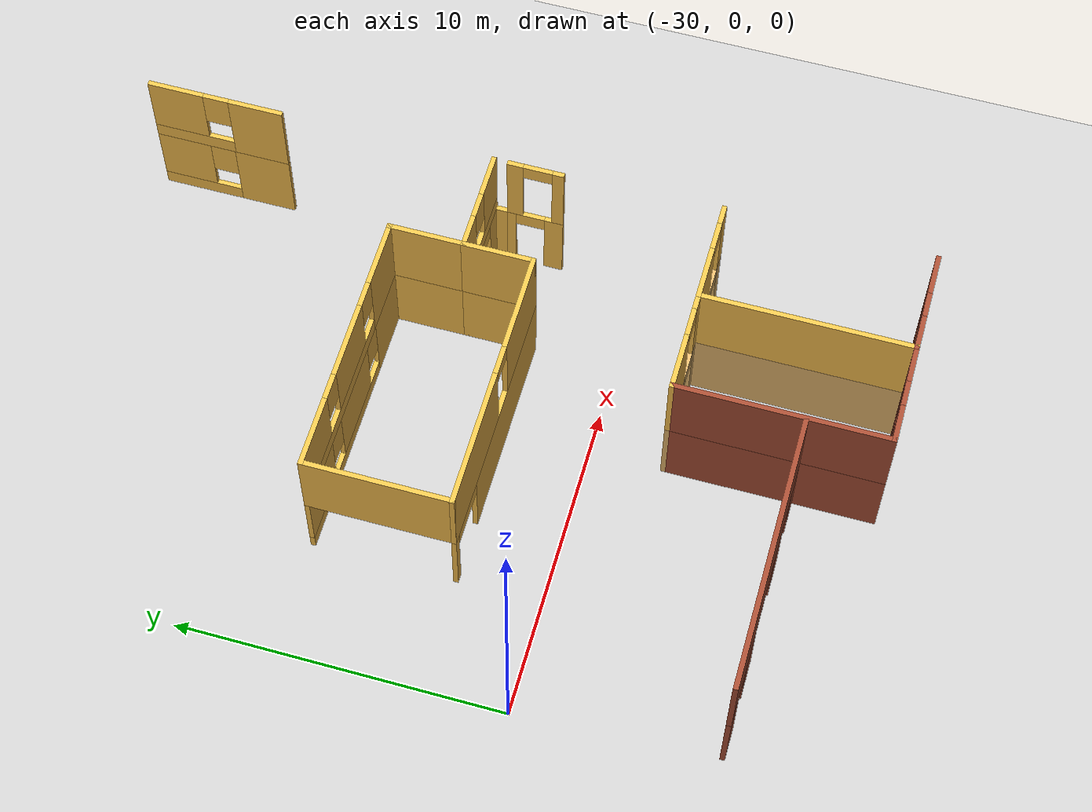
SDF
<sdf version="1.7">
 <world name="default">
  <model name="ground_plane">
   <static>1</static>
   <link name="link">
    <collision name="collision">
     <geometry><plane><normal>0 0 1</normal><size>100 100</size></plane></geometry>
     <surface>
      <contact><collide_bitmask>65535</collide_bitmask></contact>
      <friction><ode><mu>100</mu><mu2>50</mu2></ode></friction>
     </surface>
    </collision>
    <visual name="visual">
     <cast_shadows>0</cast_shadows>
     <geometry><plane><normal>0 0 1</normal><size>100 100</size></plane></geometry>
     <material>
      <script><uri>file://media/materials/scripts/gazebo.material</uri><name>Gazebo/Grey</name></script>
     </material>
    </visual>
   </link>
  </model>
  <model name="DepartmentBuilding">
   <pose>-25.6559 18.8293 0 0 -0 0</pose>
   <link name="Wall_139">
    <pose>3.31941 -16.2196 0 0 -0 0</pose>
    <visual name="Wall_139_Visual_0">
     <pose>-3.98692 0 1.25 0 -0 0</pose>
     <geometry><box><size>0.276156 0.15 2.5</size></box></geometry>
     <material>
      <script><uri>file://media/materials/scripts/gazebo.material</uri><name>Gazebo/Grey</name></script>
      <ambient>1 0.764706 0.305882 1</ambient>
     </material>
     <meta><layer>0</layer></meta>
    </visual>
    <collision name="Wall_139_Collision_0">
     <geometry><box><size>0.276156 0.15 2.5</size></box></geometry>
     <pose>-3.98692 0 1.25 0 -0 0</pose>
    </collision>
    <visual name="Wall_139_Visual_1">
     <pose>0.988078 0 1.25 0 -0 0</pose>
     <geometry><box><size>6.27384 0.15 2.5</size></box></geometry>
     <material>
      <script><uri>file://media/materials/scripts/gazebo.material</uri><name>Gazebo/Grey</name></script>
      <ambient>1 0.764706 0.305882 1</ambient>
     </material>
     <meta><layer>0</layer></meta>
    </visual>
    <collision name="Wall_139_Collision_1">
     <geometry><box><size>6.27384 0.15 2.5</size></box></geometry>
     <pose>0.988078 0 1.25 0 -0 0</pose>
    </collision>
    <visual name="Wall_139_Visual_2">
     <pose>-2.99884 0 2.25 0 -0 0</pose>
     <geometry><box><size>1.7 0.15 0.5</size></box></geometry>
     <material>
      <script><uri>file://media/materials/scripts/gazebo.material</uri><name>Gazebo/Grey</name></script>
      <ambient>1 0.764706 0.305882 1</ambient>
     </material>
     <meta><layer>0</layer></meta>
    </visual>
    <collision name="Wall_139_Collision_2">
     <geometry><box><size>1.7 0.15 0.5</size></box></geometry>
     <pose>-2.99884 0 2.25 0 -0 0</pose>
    </collision>
   </link>
   <link name="Wall_141">
    <pose>3.31941 -11.8696 0 0 -0 3.14159</pose>
    <visual name="Wall_141_Visual_0">
     <pose>-3.09473 0 1.25 0 -0 0</pose>
     <geometry><box><size>2.06054 0.15 2.5</size></box></geometry>
     <material>
      <script><uri>file://media/materials/scripts/gazebo.material</uri><name>Gazebo/Grey</name></script>
      <ambient>1 0.764706 0.305882 1</ambient>
     </material>
     <meta><layer>0</layer></meta>
    </visual>
    <collision name="Wall_141_Collision_0">
     <geometry><box><size>2.06054 0.15 2.5</size></box></geometry>
     <pose>-3.09473 0 1.25 0 -0 0</pose>
    </collision>
    <visual name="Wall_141_Visual_1">
     <pose>1.03027 0 0.25 0 -0 0</pose>
     <geometry><box><size>6.18946 0.15 0.5</size></box></geometry>
     <material>
      <script><uri>file://media/materials/scripts/gazebo.material</uri><name>Gazebo/Grey</name></script>
      <ambient>1 0.764706 0.305882 1</ambient>
     </material>
     <meta><layer>0</layer></meta>
    </visual>
    <collision name="Wall_141_Collision_1">
     <geometry><box><size>6.18946 0.15 0.5</size></box></geometry>
     <pose>1.03027 0 0.25 0 -0 0</pose>
    </collision>
    <visual name="Wall_141_Visual_2">
     <pose>-0.021918 0 1.5 0 -0 0</pose>
     <geometry><box><size>2.48509 0.15 2</size></box></geometry>
     <material>
      <script><uri>file://media/materials/scripts/gazebo.material</uri><name>Gazebo/Grey</name></script>
      <ambient>1 0.764706 0.305882 1</ambient>
     </material>
     <meta><layer>0</layer></meta>
    </visual>
    <collision name="Wall_141_Collision_2">
     <geometry><box><size>2.48509 0.15 2</size></box></geometry>
     <pose>-0.021918 0 1.5 0 -0 0</pose>
    </collision>
    <visual name="Wall_141_Visual_3">
     <pose>3.07281 0 1.5 0 -0 0</pose>
     <geometry><box><size>2.10437 0.15 2</size></box></geometry>
     <material>
      <script><uri>file://media/materials/scripts/gazebo.material</uri><name>Gazebo/Grey</name></script>
      <ambient>1 0.764706 0.305882 1</ambient>
     </material>
     <meta><layer>0</layer></meta>
    </visual>
    <collision name="Wall_141_Collision_3">
     <geometry><box><size>2.10437 0.15 2</size></box></geometry>
     <pose>3.07281 0 1.5 0 -0 0</pose>
    </collision>
    <visual name="Wall_141_Visual_4">
     <pose>-1.66446 0 1.9 0 -0 0</pose>
     <geometry><box><size>0.8 0.15 1.2</size></box></geometry>
     <material>
      <script><uri>file://media/materials/scripts/gazebo.material</uri><name>Gazebo/Grey</name></script>
      <ambient>1 0.764706 0.305882 1</ambient>
     </material>
     <meta><layer>0</layer></meta>
    </visual>
    <collision name="Wall_141_Collision_4">
     <geometry><box><size>0.8 0.15 1.2</size></box></geometry>
     <pose>-1.66446 0 1.9 0 -0 0</pose>
    </collision>
    <visual name="Wall_141_Visual_5">
     <pose>1.62063 0 1.9 0 -0 0</pose>
     <geometry><box><size>0.8 0.15 1.2</size></box></geometry>
     <material>
      <script><uri>file://media/materials/scripts/gazebo.material</uri><name>Gazebo/Grey</name></script>
      <ambient>1 0.764706 0.305882 1</ambient>
     </material>
     <meta><layer>0</layer></meta>
    </visual>
    <collision name="Wall_141_Collision_5">
     <geometry><box><size>0.8 0.15 1.2</size></box></geometry>
     <pose>1.62063 0 1.9 0 -0 0</pose>
    </collision>
   </link>
   <link name="Wall_143">
    <collision name="Wall_143_Collision">
     <geometry><box><size>2.25 0.15 2.5</size></box></geometry>
     <pose>0 0 1.25 0 -0 0</pose>
    </collision>
    <visual name="Wall_143_Visual">
     <pose>0 0 1.25 0 -0 0</pose>
     <geometry><box><size>2.25 0.15 2.5</size></box></geometry>
     <material>
      <script><uri>file://media/materials/scripts/gazebo.material</uri><name>Gazebo/Grey</name></script>
      <ambient>1 0.764706 0.305882 1</ambient>
     </material>
     <meta><layer>0</layer></meta>
    </visual>
    <pose>7.36941 -15.1696 0 0 -0 1.5708</pose>
   </link>
   <link name="Wall_144">
    <collision name="Wall_144_Collision">
     <geometry><box><size>2.4 0.15 2.5</size></box></geometry>
     <pose>0 0 1.25 0 -0 0</pose>
    </collision>
    <visual name="Wall_144_Visual">
     <pose>0 0 1.25 0 -0 0</pose>
     <geometry><box><size>2.4 0.15 2.5</size></box></geometry>
     <material>
      <script><uri>file://media/materials/scripts/gazebo.material</uri><name>Gazebo/Grey</name></script>
      <ambient>1 0.764706 0.305882 1</ambient>
     </material>
     <meta><layer>0</layer></meta>
    </visual>
    <pose>7.36941 -12.9946 0 0 -0 1.5708</pose>
   </link>
   <link name="Wall_157">
    <pose>8.91941 -14.1196 0 0 -0 0</pose>
    <visual name="Wall_157_Visual_0">
     <pose>-1.25045 0 1.25 0 -0 0</pose>
     <geometry><box><size>0.749105 0.15 2.5</size></box></geometry>
     <material>
      <script><uri>file://media/materials/scripts/gazebo.material</uri><name>Gazebo/Grey</name></script>
      <ambient>1 0.764706 0.305882 1</ambient>
     </material>
     <meta><layer>0</layer></meta>
    </visual>
    <collision name="Wall_157_Collision_0">
     <geometry><box><size>0.749105 0.15 2.5</size></box></geometry>
     <pose>-1.25045 0 1.25 0 -0 0</pose>
    </collision>
    <visual name="Wall_157_Visual_1">
     <pose>1.22455 0 1.25 0 -0 0</pose>
     <geometry><box><size>0.800895 0.15 2.5</size></box></geometry>
     <material>
      <script><uri>file://media/materials/scripts/gazebo.material</uri><name>Gazebo/Grey</name></script>
      <ambient>1 0.764706 0.305882 1</ambient>
     </material>
     <meta><layer>0</layer></meta>
    </visual>
    <collision name="Wall_157_Collision_1">
     <geometry><box><size>0.800895 0.15 2.5</size></box></geometry>
     <pose>1.22455 0 1.25 0 -0 0</pose>
    </collision>
    <visual name="Wall_157_Visual_2">
     <pose>-0.025895 0 2.25 0 -0 0</pose>
     <geometry><box><size>1.7 0.15 0.5</size></box></geometry>
     <material>
      <script><uri>file://media/materials/scripts/gazebo.material</uri><name>Gazebo/Grey</name></script>
      <ambient>1 0.764706 0.305882 1</ambient>
     </material>
     <meta><layer>0</layer></meta>
    </visual>
    <collision name="Wall_157_Collision_2">
     <geometry><box><size>1.7 0.15 0.5</size></box></geometry>
     <pose>-0.025895 0 2.25 0 -0 0</pose>
    </collision>
   </link>
   <link name="Wall_165">
    <collision name="Wall_165_Collision">
     <geometry><box><size>0.65 0.15 2.5</size></box></geometry>
     <pose>0 0 1.25 0 -0 0</pose>
    </collision>
    <visual name="Wall_165_Visual">
     <pose>0 0 1.25 0 -0 0</pose>
     <geometry><box><size>0.65 0.15 2.5</size></box></geometry>
     <material>
      <script><uri>file://media/materials/scripts/gazebo.material</uri><name>Gazebo/Grey</name></script>
      <ambient>1 0.764706 0.305882 1</ambient>
     </material>
     <meta><layer>0</layer></meta>
    </visual>
    <pose>10.4694 -14.3696 0 0 -0 1.5708</pose>
   </link>
   <link name="Wall_169">
    <pose>10.4694 -15.4196 0 0 -0 1.5708</pose>
    <visual name="Wall_169_Visual_0">
     <pose>-0.582411 0 1.25 0 -0 0</pose>
     <geometry><box><size>0.585178 0.15 2.5</size></box></geometry>
     <material>
      <script><uri>file://media/materials/scripts/gazebo.material</uri><name>Gazebo/Grey</name></script>
      <ambient>1 0.764706 0.305882 1</ambient>
     </material>
     <meta><layer>0</layer></meta>
    </visual>
    <collision name="Wall_169_Collision_0">
     <geometry><box><size>0.585178 0.15 2.5</size></box></geometry>
     <pose>-0.582411 0 1.25 0 -0 0</pose>
    </collision>
    <visual name="Wall_169_Visual_1">
     <pose>0.742589 0 1.25 0 -0 0</pose>
     <geometry><box><size>0.264822 0.15 2.5</size></box></geometry>
     <material>
      <script><uri>file://media/materials/scripts/gazebo.material</uri><name>Gazebo/Grey</name></script>
      <ambient>1 0.764706 0.305882 1</ambient>
     </material>
     <meta><layer>0</layer></meta>
    </visual>
    <collision name="Wall_169_Collision_1">
     <geometry><box><size>0.264822 0.15 2.5</size></box></geometry>
     <pose>0.742589 0 1.25 0 -0 0</pose>
    </collision>
    <visual name="Wall_169_Visual_2">
     <pose>0.160178 0 2.25 0 -0 0</pose>
     <geometry><box><size>0.9 0.15 0.5</size></box></geometry>
     <material>
      <script><uri>file://media/materials/scripts/gazebo.material</uri><name>Gazebo/Grey</name></script>
      <ambient>1 0.764706 0.305882 1</ambient>
     </material>
     <meta><layer>0</layer></meta>
    </visual>
    <collision name="Wall_169_Collision_2">
     <geometry><box><size>0.9 0.15 0.5</size></box></geometry>
     <pose>0.160178 0 2.25 0 -0 0</pose>
    </collision>
   </link>
   <link name="Wall_196">
    <pose>10.3194 -5.46094 0 0 -0 1.5708</pose>
    <visual name="Wall_196_Visual_0">
     <pose>-1.25705 0 1.25 0 -0 0</pose>
     <geometry><box><size>1.73591 0.15 2.5</size></box></geometry>
     <material>
      <script><uri>file://media/materials/scripts/gazebo.material</uri><name>Gazebo/Grey</name></script>
      <ambient>1 0.764706 0.305882 1</ambient>
     </material>
     <meta><layer>0</layer></meta>
    </visual>
    <collision name="Wall_196_Collision_0">
     <geometry><box><size>1.73591 0.15 2.5</size></box></geometry>
     <pose>-1.25705 0 1.25 0 -0 0</pose>
    </collision>
    <visual name="Wall_196_Visual_1">
     <pose>0.867953 0 0.25 0 -0 0</pose>
     <geometry><box><size>2.51409 0.15 0.5</size></box></geometry>
     <material>
      <script><uri>file://media/materials/scripts/gazebo.material</uri><name>Gazebo/Grey</name></script>
      <ambient>1 0.764706 0.305882 1</ambient>
     </material>
     <meta><layer>0</layer></meta>
    </visual>
    <collision name="Wall_196_Collision_1">
     <geometry><box><size>2.51409 0.15 0.5</size></box></geometry>
     <pose>0.867953 0 0.25 0 -0 0</pose>
    </collision>
    <visual name="Wall_196_Visual_2">
     <pose>1.26795 0 1.5 0 -0 0</pose>
     <geometry><box><size>1.71409 0.15 2</size></box></geometry>
     <material>
      <script><uri>file://media/materials/scripts/gazebo.material</uri><name>Gazebo/Grey</name></script>
      <ambient>1 0.764706 0.305882 1</ambient>
     </material>
     <meta><layer>0</layer></meta>
    </visual>
    <collision name="Wall_196_Collision_2">
     <geometry><box><size>1.71409 0.15 2</size></box></geometry>
     <pose>1.26795 0 1.5 0 -0 0</pose>
    </collision>
    <visual name="Wall_196_Visual_3">
     <pose>0.010906 0 1.9 0 -0 0</pose>
     <geometry><box><size>0.8 0.15 1.2</size></box></geometry>
     <material>
      <script><uri>file://media/materials/scripts/gazebo.material</uri><name>Gazebo/Grey</name></script>
      <ambient>1 0.764706 0.305882 1</ambient>
     </material>
     <meta><layer>0</layer></meta>
    </visual>
    <collision name="Wall_196_Collision_3">
     <geometry><box><size>0.8 0.15 1.2</size></box></geometry>
     <pose>0.010906 0 1.9 0 -0 0</pose>
    </collision>
   </link>
   <link name="Wall_37">
    <pose>9.08964 -21.0815 0 0 -0 3.14159</pose>
    <visual name="Wall_37_Visual_0">
     <pose>-1.3326 0 1.25 0 -0 0</pose>
     <geometry><box><size>0.584798 0.15 2.5</size></box></geometry>
     <material>
      <script><uri>file://media/materials/scripts/gazebo.material</uri><name>Gazebo/Grey</name></script>
      <ambient>0.913725 0.72549 0.431373 1</ambient>
     </material>
     <meta><layer>0</layer></meta>
    </visual>
    <collision name="Wall_37_Collision_0">
     <geometry><box><size>0.584798 0.15 2.5</size></box></geometry>
     <pose>-1.3326 0 1.25 0 -0 0</pose>
    </collision>
    <visual name="Wall_37_Visual_1">
     <pose>0.742399 0 1.25 0 -0 0</pose>
     <geometry><box><size>1.7652 0.15 2.5</size></box></geometry>
     <material>
      <script><uri>file://media/materials/scripts/gazebo.material</uri><name>Gazebo/Grey</name></script>
      <ambient>0.913725 0.72549 0.431373 1</ambient>
     </material>
     <meta><layer>0</layer></meta>
    </visual>
    <collision name="Wall_37_Collision_1">
     <geometry><box><size>1.7652 0.15 2.5</size></box></geometry>
     <pose>0.742399 0 1.25 0 -0 0</pose>
    </collision>
    <visual name="Wall_37_Visual_2">
     <pose>-0.590202 0 2.25 0 -0 0</pose>
     <geometry><box><size>0.9 0.15 0.5</size></box></geometry>
     <material>
      <script><uri>file://media/materials/scripts/gazebo.material</uri><name>Gazebo/Grey</name></script>
      <ambient>0.913725 0.72549 0.431373 1</ambient>
     </material>
     <meta><layer>0</layer></meta>
    </visual>
    <collision name="Wall_37_Collision_2">
     <geometry><box><size>0.9 0.15 0.5</size></box></geometry>
     <pose>-0.590202 0 2.25 0 -0 0</pose>
    </collision>
   </link>
   <link name="Wall_38">
    <collision name="Wall_38_Collision">
     <geometry><box><size>6.5 0.15 2.5</size></box></geometry>
     <pose>0 0 1.25 0 -0 0</pose>
    </collision>
    <visual name="Wall_38_Visual">
     <pose>0 0 1.25 0 -0 0</pose>
     <geometry><box><size>6.5 0.15 2.5</size></box></geometry>
     <material>
      <script><uri>file://media/materials/scripts/gazebo.material</uri><name>Gazebo/Grey</name></script>
      <ambient>0.913725 0.72549 0.431373 1</ambient>
     </material>
     <meta><layer>0</layer></meta>
    </visual>
    <pose>7.53964 -24.2565 0 0 -0 -1.5708</pose>
   </link>
   <link name="Wall_39">
    <pose>9.08964 -27.4315 0 0 -0 0</pose>
    <visual name="Wall_39_Visual_0">
     <pose>-1.00835 0 1.25 0 -0 0</pose>
     <geometry><box><size>1.2333 0.15 2.5</size></box></geometry>
     <material>
      <script><uri>file://media/materials/scripts/gazebo.material</uri><name>Gazebo/Bricks</name></script>
      <ambient>1 1 1 1</ambient>
     </material>
     <meta><layer>0</layer></meta>
    </visual>
    <collision name="Wall_39_Collision_0">
     <geometry><box><size>1.2333 0.15 2.5</size></box></geometry>
     <pose>-1.00835 0 1.25 0 -0 0</pose>
    </collision>
    <visual name="Wall_39_Visual_1">
     <pose>0.616651 0 0.25 0 -0 0</pose>
     <geometry><box><size>2.0167 0.15 0.5</size></box></geometry>
     <material>
      <script><uri>file://media/materials/scripts/gazebo.material</uri><name>Gazebo/Bricks</name></script>
      <ambient>1 1 1 1</ambient>
     </material>
     <meta><layer>0</layer></meta>
    </visual>
    <collision name="Wall_39_Collision_1">
     <geometry><box><size>2.0167 0.15 0.5</size></box></geometry>
     <pose>0.616651 0 0.25 0 -0 0</pose>
    </collision>
    <visual name="Wall_39_Visual_2">
     <pose>1.01665 0 1.5 0 -0 0</pose>
     <geometry><box><size>1.2167 0.15 2</size></box></geometry>
     <material>
      <script><uri>file://media/materials/scripts/gazebo.material</uri><name>Gazebo/Bricks</name></script>
      <ambient>1 1 1 1</ambient>
     </material>
     <meta><layer>0</layer></meta>
    </visual>
    <collision name="Wall_39_Collision_2">
     <geometry><box><size>1.2167 0.15 2</size></box></geometry>
     <pose>1.01665 0 1.5 0 -0 0</pose>
    </collision>
    <visual name="Wall_39_Visual_3">
     <pose>0.008302 0 1.9 0 -0 0</pose>
     <geometry><box><size>0.8 0.15 1.2</size></box></geometry>
     <material>
      <script><uri>file://media/materials/scripts/gazebo.material</uri><name>Gazebo/Bricks</name></script>
      <ambient>1 1 1 1</ambient>
     </material>
     <meta><layer>0</layer></meta>
    </visual>
    <collision name="Wall_39_Collision_3">
     <geometry><box><size>0.8 0.15 1.2</size></box></geometry>
     <pose>0.008302 0 1.9 0 -0 0</pose>
    </collision>
   </link>
   <link name="Wall_41">
    <pose>5.98964 -21.0815 0 0 -0 3.14159</pose>
    <visual name="Wall_41_Visual_0">
     <pose>-1.38156 0 1.25 0 -0 0</pose>
     <geometry><box><size>0.486873 0.15 2.5</size></box></geometry>
     <material>
      <script><uri>file://media/materials/scripts/gazebo.material</uri><name>Gazebo/Grey</name></script>
      <ambient>0.913725 0.72549 0.431373 1</ambient>
     </material>
     <meta><layer>0</layer></meta>
    </visual>
    <collision name="Wall_41_Collision_0">
     <geometry><box><size>0.486873 0.15 2.5</size></box></geometry>
     <pose>-1.38156 0 1.25 0 -0 0</pose>
    </collision>
    <visual name="Wall_41_Visual_1">
     <pose>0.693436 0 1.25 0 -0 0</pose>
     <geometry><box><size>1.86313 0.15 2.5</size></box></geometry>
     <material>
      <script><uri>file://media/materials/scripts/gazebo.material</uri><name>Gazebo/Grey</name></script>
      <ambient>0.913725 0.72549 0.431373 1</ambient>
     </material>
     <meta><layer>0</layer></meta>
    </visual>
    <collision name="Wall_41_Collision_1">
     <geometry><box><size>1.86313 0.15 2.5</size></box></geometry>
     <pose>0.693436 0 1.25 0 -0 0</pose>
    </collision>
    <visual name="Wall_41_Visual_2">
     <pose>-0.688127 0 2.25 0 -0 0</pose>
     <geometry><box><size>0.9 0.15 0.5</size></box></geometry>
     <material>
      <script><uri>file://media/materials/scripts/gazebo.material</uri><name>Gazebo/Grey</name></script>
      <ambient>0.913725 0.72549 0.431373 1</ambient>
     </material>
     <meta><layer>0</layer></meta>
    </visual>
    <collision name="Wall_41_Collision_2">
     <geometry><box><size>0.9 0.15 0.5</size></box></geometry>
     <pose>-0.688127 0 2.25 0 -0 0</pose>
    </collision>
   </link>
   <link name="Wall_42">
    <collision name="Wall_42_Collision">
     <geometry><box><size>6.5 0.15 2.5</size></box></geometry>
     <pose>0 0 1.25 0 -0 0</pose>
    </collision>
    <visual name="Wall_42_Visual">
     <pose>0 0 1.25 0 -0 0</pose>
     <geometry><box><size>6.5 0.15 2.5</size></box></geometry>
     <material>
      <script><uri>file://media/materials/scripts/gazebo.material</uri><name>Gazebo/Bricks</name></script>
      <ambient>1 1 1 1</ambient>
     </material>
     <meta><layer>0</layer></meta>
    </visual>
    <pose>4.43964 -24.2565 0 0 -0 -1.5708</pose>
   </link>
   <link name="Wall_43">
    <pose>5.98964 -27.4315 0 0 -0 0</pose>
    <visual name="Wall_43_Visual_0">
     <pose>-1.01229 0 1.25 0 -0 0</pose>
     <geometry><box><size>1.22543 0.15 2.5</size></box></geometry>
     <material>
      <script><uri>file://media/materials/scripts/gazebo.material</uri><name>Gazebo/Bricks</name></script>
      <ambient>1 1 1 1</ambient>
     </material>
     <meta><layer>0</layer></meta>
    </visual>
    <collision name="Wall_43_Collision_0">
     <geometry><box><size>1.22543 0.15 2.5</size></box></geometry>
     <pose>-1.01229 0 1.25 0 -0 0</pose>
    </collision>
    <visual name="Wall_43_Visual_1">
     <pose>0.612713 0 0.25 0 -0 0</pose>
     <geometry><box><size>2.02457 0.15 0.5</size></box></geometry>
     <material>
      <script><uri>file://media/materials/scripts/gazebo.material</uri><name>Gazebo/Bricks</name></script>
      <ambient>1 1 1 1</ambient>
     </material>
     <meta><layer>0</layer></meta>
    </visual>
    <collision name="Wall_43_Collision_1">
     <geometry><box><size>2.02457 0.15 0.5</size></box></geometry>
     <pose>0.612713 0 0.25 0 -0 0</pose>
    </collision>
    <visual name="Wall_43_Visual_2">
     <pose>1.01271 0 1.5 0 -0 0</pose>
     <geometry><box><size>1.22457 0.15 2</size></box></geometry>
     <material>
      <script><uri>file://media/materials/scripts/gazebo.material</uri><name>Gazebo/Bricks</name></script>
      <ambient>1 1 1 1</ambient>
     </material>
     <meta><layer>0</layer></meta>
    </visual>
    <collision name="Wall_43_Collision_2">
     <geometry><box><size>1.22457 0.15 2</size></box></geometry>
     <pose>1.01271 0 1.5 0 -0 0</pose>
    </collision>
    <visual name="Wall_43_Visual_3">
     <pose>0.000427 0 1.9 0 -0 0</pose>
     <geometry><box><size>0.8 0.15 1.2</size></box></geometry>
     <material>
      <script><uri>file://media/materials/scripts/gazebo.material</uri><name>Gazebo/Bricks</name></script>
      <ambient>1 1 1 1</ambient>
     </material>
     <meta><layer>0</layer></meta>
    </visual>
    <collision name="Wall_43_Collision_3">
     <geometry><box><size>0.8 0.15 1.2</size></box></geometry>
     <pose>0.000427 0 1.9 0 -0 0</pose>
    </collision>
   </link>
   <link name="Wall_46">
    <pose>0.232159 -24.9309 0 0 -0 3.14159</pose>
    <visual name="Wall_46_Visual_0">
     <pose>-3.6792 0 1.25 0 -0 0</pose>
     <geometry><box><size>1.1416 0.15 2.5</size></box></geometry>
     <material>
      <script><uri>file://media/materials/scripts/gazebo.material</uri><name>Gazebo/Bricks</name></script>
      <ambient>1 1 1 1</ambient>
     </material>
     <meta><layer>0</layer></meta>
    </visual>
    <collision name="Wall_46_Collision_0">
     <geometry><box><size>1.1416 0.15 2.5</size></box></geometry>
     <pose>-3.6792 0 1.25 0 -0 0</pose>
    </collision>
    <visual name="Wall_46_Visual_1">
     <pose>-1.60872 0 1.25 0 -0 0</pose>
     <geometry><box><size>1.19935 0.15 2.5</size></box></geometry>
     <material>
      <script><uri>file://media/materials/scripts/gazebo.material</uri><name>Gazebo/Bricks</name></script>
      <ambient>1 1 1 1</ambient>
     </material>
     <meta><layer>0</layer></meta>
    </visual>
    <collision name="Wall_46_Collision_1">
     <geometry><box><size>1.19935 0.15 2.5</size></box></geometry>
     <pose>-1.60872 0 1.25 0 -0 0</pose>
    </collision>
    <visual name="Wall_46_Visual_2">
     <pose>1.73402 0 1.25 0 -0 0</pose>
     <geometry><box><size>1.18613 0.15 2.5</size></box></geometry>
     <material>
      <script><uri>file://media/materials/scripts/gazebo.material</uri><name>Gazebo/Bricks</name></script>
      <ambient>1 1 1 1</ambient>
     </material>
     <meta><layer>0</layer></meta>
    </visual>
    <collision name="Wall_46_Collision_2">
     <geometry><box><size>1.18613 0.15 2.5</size></box></geometry>
     <pose>1.73402 0 1.25 0 -0 0</pose>
    </collision>
    <visual name="Wall_46_Visual_3">
     <pose>3.73854 0 1.25 0 -0 0</pose>
     <geometry><box><size>1.02292 0.15 2.5</size></box></geometry>
     <material>
      <script><uri>file://media/materials/scripts/gazebo.material</uri><name>Gazebo/Bricks</name></script>
      <ambient>1 1 1 1</ambient>
     </material>
     <meta><layer>0</layer></meta>
    </visual>
    <collision name="Wall_46_Collision_3">
     <geometry><box><size>1.02292 0.15 2.5</size></box></geometry>
     <pose>3.73854 0 1.25 0 -0 0</pose>
    </collision>
    <visual name="Wall_46_Visual_4">
     <pose>-2.6584 0 2.25 0 -0 0</pose>
     <geometry><box><size>0.9 0.15 0.5</size></box></geometry>
     <material>
      <script><uri>file://media/materials/scripts/gazebo.material</uri><name>Gazebo/Bricks</name></script>
      <ambient>1 1 1 1</ambient>
     </material>
     <meta><layer>0</layer></meta>
    </visual>
    <collision name="Wall_46_Collision_4">
     <geometry><box><size>0.9 0.15 0.5</size></box></geometry>
     <pose>-2.6584 0 2.25 0 -0 0</pose>
    </collision>
    <visual name="Wall_46_Visual_5">
     <pose>0.065954 0 2.25 0 -0 0</pose>
     <geometry><box><size>2.15 0.15 0.5</size></box></geometry>
     <material>
      <script><uri>file://media/materials/scripts/gazebo.material</uri><name>Gazebo/Bricks</name></script>
      <ambient>1 1 1 1</ambient>
     </material>
     <meta><layer>0</layer></meta>
    </visual>
    <collision name="Wall_46_Collision_5">
     <geometry><box><size>2.15 0.15 0.5</size></box></geometry>
     <pose>0.065954 0 2.25 0 -0 0</pose>
    </collision>
    <visual name="Wall_46_Visual_6">
     <pose>2.77708 0 2.25 0 -0 0</pose>
     <geometry><box><size>0.9 0.15 0.5</size></box></geometry>
     <material>
      <script><uri>file://media/materials/scripts/gazebo.material</uri><name>Gazebo/Bricks</name></script>
      <ambient>1 1 1 1</ambient>
     </material>
     <meta><layer>0</layer></meta>
    </visual>
    <collision name="Wall_46_Collision_6">
     <geometry><box><size>0.9 0.15 0.5</size></box></geometry>
     <pose>2.77708 0 2.25 0 -0 0</pose>
    </collision>
   </link>
   <link name="Wall_798">
    <pose>9.08964 -21.0815 2.5 0 -0 3.14159</pose>
    <visual name="Wall_798_Visual_0">
     <pose>-1.31123 0 1.25 0 -0 0</pose>
     <geometry><box><size>0.627534 0.15 2.5</size></box></geometry>
     <material>
      <script><uri>file://media/materials/scripts/gazebo.material</uri><name>Gazebo/Grey</name></script>
      <ambient>1 0.764706 0.305882 1</ambient>
     </material>
     <meta><layer>1</layer></meta>
    </visual>
    <collision name="Wall_798_Collision_0">
     <geometry><box><size>0.627534 0.15 2.5</size></box></geometry>
     <pose>-1.31123 0 1.25 0 -0 0</pose>
    </collision>
    <visual name="Wall_798_Visual_1">
     <pose>0.763767 0 1.25 0 -0 0</pose>
     <geometry><box><size>1.72247 0.15 2.5</size></box></geometry>
     <material>
      <script><uri>file://media/materials/scripts/gazebo.material</uri><name>Gazebo/Grey</name></script>
      <ambient>1 0.764706 0.305882 1</ambient>
     </material>
     <meta><layer>1</layer></meta>
    </visual>
    <collision name="Wall_798_Collision_1">
     <geometry><box><size>1.72247 0.15 2.5</size></box></geometry>
     <pose>0.763767 0 1.25 0 -0 0</pose>
    </collision>
    <visual name="Wall_798_Visual_2">
     <pose>-0.547466 0 2.25 0 -0 0</pose>
     <geometry><box><size>0.9 0.15 0.5</size></box></geometry>
     <material>
      <script><uri>file://media/materials/scripts/gazebo.material</uri><name>Gazebo/Grey</name></script>
      <ambient>1 0.764706 0.305882 1</ambient>
     </material>
     <meta><layer>1</layer></meta>
    </visual>
    <collision name="Wall_798_Collision_2">
     <geometry><box><size>0.9 0.15 0.5</size></box></geometry>
     <pose>-0.547466 0 2.25 0 -0 0</pose>
    </collision>
   </link>
   <link name="Wall_799">
    <collision name="Wall_799_Collision">
     <geometry><box><size>6.5 0.15 2.5</size></box></geometry>
     <pose>0 0 1.25 0 -0 0</pose>
    </collision>
    <visual name="Wall_799_Visual">
     <pose>0 0 1.25 0 -0 0</pose>
     <geometry><box><size>6.5 0.15 2.5</size></box></geometry>
     <material>
      <script><uri>file://media/materials/scripts/gazebo.material</uri><name>Gazebo/Grey</name></script>
      <ambient>1 0.764706 0.305882 1</ambient>
     </material>
     <meta><layer>1</layer></meta>
    </visual>
    <pose>7.53964 -24.2565 2.5 0 -0 -1.5708</pose>
   </link>
   <link name="Wall_800">
    <pose>9.08964 -27.4315 2.5 0 -0 0</pose>
    <visual name="Wall_800_Visual_0">
     <pose>-1.05413 0 1.25 0 -0 0</pose>
     <geometry><box><size>1.14175 0.15 2.5</size></box></geometry>
     <material>
      <script><uri>file://media/materials/scripts/gazebo.material</uri><name>Gazebo/Bricks</name></script>
      <ambient>1 1 1 1</ambient>
     </material>
     <meta><layer>1</layer></meta>
    </visual>
    <collision name="Wall_800_Collision_0">
     <geometry><box><size>1.14175 0.15 2.5</size></box></geometry>
     <pose>-1.05413 0 1.25 0 -0 0</pose>
    </collision>
    <visual name="Wall_800_Visual_1">
     <pose>0.570874 0 0.25 0 -0 0</pose>
     <geometry><box><size>2.10825 0.15 0.5</size></box></geometry>
     <material>
      <script><uri>file://media/materials/scripts/gazebo.material</uri><name>Gazebo/Bricks</name></script>
      <ambient>1 1 1 1</ambient>
     </material>
     <meta><layer>1</layer></meta>
    </visual>
    <collision name="Wall_800_Collision_1">
     <geometry><box><size>2.10825 0.15 0.5</size></box></geometry>
     <pose>0.570874 0 0.25 0 -0 0</pose>
    </collision>
    <visual name="Wall_800_Visual_2">
     <pose>0.970874 0 1.5 0 -0 0</pose>
     <geometry><box><size>1.30825 0.15 2</size></box></geometry>
     <material>
      <script><uri>file://media/materials/scripts/gazebo.material</uri><name>Gazebo/Bricks</name></script>
      <ambient>1 1 1 1</ambient>
     </material>
     <meta><layer>1</layer></meta>
    </visual>
    <collision name="Wall_800_Collision_2">
     <geometry><box><size>1.30825 0.15 2</size></box></geometry>
     <pose>0.970874 0 1.5 0 -0 0</pose>
    </collision>
    <visual name="Wall_800_Visual_3">
     <pose>-0.083252 0 1.9 0 -0 0</pose>
     <geometry><box><size>0.8 0.15 1.2</size></box></geometry>
     <material>
      <script><uri>file://media/materials/scripts/gazebo.material</uri><name>Gazebo/Bricks</name></script>
      <ambient>1 1 1 1</ambient>
     </material>
     <meta><layer>1</layer></meta>
    </visual>
    <collision name="Wall_800_Collision_3">
     <geometry><box><size>0.8 0.15 1.2</size></box></geometry>
     <pose>-0.083252 0 1.9 0 -0 0</pose>
    </collision>
   </link>
   <link name="Wall_801">
    <pose>5.98964 -21.0815 2.5 0 -0 3.14159</pose>
    <visual name="Wall_801_Visual_0">
     <pose>-1.34502 0 1.25 0 -0 0</pose>
     <geometry><box><size>0.559957 0.15 2.5</size></box></geometry>
     <material>
      <script><uri>file://media/materials/scripts/gazebo.material</uri><name>Gazebo/Grey</name></script>
      <ambient>1 0.764706 0.305882 1</ambient>
     </material>
     <meta><layer>1</layer></meta>
    </visual>
    <collision name="Wall_801_Collision_0">
     <geometry><box><size>0.559957 0.15 2.5</size></box></geometry>
     <pose>-1.34502 0 1.25 0 -0 0</pose>
    </collision>
    <visual name="Wall_801_Visual_1">
     <pose>0.729979 0 1.25 0 -0 0</pose>
     <geometry><box><size>1.79004 0.15 2.5</size></box></geometry>
     <material>
      <script><uri>file://media/materials/scripts/gazebo.material</uri><name>Gazebo/Grey</name></script>
      <ambient>1 0.764706 0.305882 1</ambient>
     </material>
     <meta><layer>1</layer></meta>
    </visual>
    <collision name="Wall_801_Collision_1">
     <geometry><box><size>1.79004 0.15 2.5</size></box></geometry>
     <pose>0.729979 0 1.25 0 -0 0</pose>
    </collision>
    <visual name="Wall_801_Visual_2">
     <pose>-0.615043 0 2.25 0 -0 0</pose>
     <geometry><box><size>0.9 0.15 0.5</size></box></geometry>
     <material>
      <script><uri>file://media/materials/scripts/gazebo.material</uri><name>Gazebo/Grey</name></script>
      <ambient>1 0.764706 0.305882 1</ambient>
     </material>
     <meta><layer>1</layer></meta>
    </visual>
    <collision name="Wall_801_Collision_2">
     <geometry><box><size>0.9 0.15 0.5</size></box></geometry>
     <pose>-0.615043 0 2.25 0 -0 0</pose>
    </collision>
   </link>
   <link name="Wall_802">
    <collision name="Wall_802_Collision">
     <geometry><box><size>6.5 0.15 2.5</size></box></geometry>
     <pose>0 0 1.25 0 -0 0</pose>
    </collision>
    <visual name="Wall_802_Visual">
     <pose>0 0 1.25 0 -0 0</pose>
     <geometry><box><size>6.5 0.15 2.5</size></box></geometry>
     <material>
      <script><uri>file://media/materials/scripts/gazebo.material</uri><name>Gazebo/Bricks</name></script>
      <ambient>1 1 1 1</ambient>
     </material>
     <meta><layer>1</layer></meta>
    </visual>
    <pose>4.43964 -24.2565 2.5 0 -0 -1.5708</pose>
   </link>
   <link name="Wall_803">
    <pose>5.98964 -27.4315 2.5 0 -0 0</pose>
    <visual name="Wall_803_Visual_0">
     <pose>-1.01681 0 1.25 0 -0 0</pose>
     <geometry><box><size>1.21637 0.15 2.5</size></box></geometry>
     <material>
      <script><uri>file://media/materials/scripts/gazebo.material</uri><name>Gazebo/Bricks</name></script>
      <ambient>1 1 1 1</ambient>
     </material>
     <meta><layer>1</layer></meta>
    </visual>
    <collision name="Wall_803_Collision_0">
     <geometry><box><size>1.21637 0.15 2.5</size></box></geometry>
     <pose>-1.01681 0 1.25 0 -0 0</pose>
    </collision>
    <visual name="Wall_803_Visual_1">
     <pose>0.608187 0 0.25 0 -0 0</pose>
     <geometry><box><size>2.03363 0.15 0.5</size></box></geometry>
     <material>
      <script><uri>file://media/materials/scripts/gazebo.material</uri><name>Gazebo/Bricks</name></script>
      <ambient>1 1 1 1</ambient>
     </material>
     <meta><layer>1</layer></meta>
    </visual>
    <collision name="Wall_803_Collision_1">
     <geometry><box><size>2.03363 0.15 0.5</size></box></geometry>
     <pose>0.608187 0 0.25 0 -0 0</pose>
    </collision>
    <visual name="Wall_803_Visual_2">
     <pose>1.00819 0 1.5 0 -0 0</pose>
     <geometry><box><size>1.23363 0.15 2</size></box></geometry>
     <material>
      <script><uri>file://media/materials/scripts/gazebo.material</uri><name>Gazebo/Bricks</name></script>
      <ambient>1 1 1 1</ambient>
     </material>
     <meta><layer>1</layer></meta>
    </visual>
    <collision name="Wall_803_Collision_2">
     <geometry><box><size>1.23363 0.15 2</size></box></geometry>
     <pose>1.00819 0 1.5 0 -0 0</pose>
    </collision>
    <visual name="Wall_803_Visual_3">
     <pose>-0.008626 0 1.9 0 -0 0</pose>
     <geometry><box><size>0.8 0.15 1.2</size></box></geometry>
     <material>
      <script><uri>file://media/materials/scripts/gazebo.material</uri><name>Gazebo/Bricks</name></script>
      <ambient>1 1 1 1</ambient>
     </material>
     <meta><layer>1</layer></meta>
    </visual>
    <collision name="Wall_803_Collision_3">
     <geometry><box><size>0.8 0.15 1.2</size></box></geometry>
     <pose>-0.008626 0 1.9 0 -0 0</pose>
    </collision>
   </link>
   <link name="Wall_804">
    <collision name="Wall_804_Collision">
     <geometry><box><size>8.5 0.15 2.5</size></box></geometry>
     <pose>0 0 1.25 0 -0 0</pose>
    </collision>
    <visual name="Wall_804_Visual">
     <pose>0 0 1.25 0 -0 0</pose>
     <geometry><box><size>8.5 0.15 2.5</size></box></geometry>
     <material>
      <script><uri>file://media/materials/scripts/gazebo.material</uri><name>Gazebo/Bricks</name></script>
      <ambient>1 1 1 1</ambient>
     </material>
     <meta><layer>1</layer></meta>
    </visual>
    <pose>0.232159 -24.9309 2.5 0 -0 3.14159</pose>
   </link>
   <link name="Wall_847">
    <collision name="Wall_847_Collision">
     <geometry><box><size>4.5 0.15 2.5</size></box></geometry>
     <pose>0 0 1.25 0 -0 0</pose>
    </collision>
    <visual name="Wall_847_Visual">
     <pose>0 0 1.25 0 -0 0</pose>
     <geometry><box><size>4.5 0.15 2.5</size></box></geometry>
     <material>
      <script><uri>file://media/materials/scripts/gazebo.material</uri><name>Gazebo/Grey</name></script>
      <ambient>1 0.764706 0.305882 1</ambient>
     </material>
     <meta><layer>1</layer></meta>
    </visual>
    <pose>-0.730591 -14.0446 2.5 0 -0 1.5708</pose>
   </link>
   <link name="Wall_849">
    <pose>3.31941 -16.2196 2.5 0 -0 0</pose>
    <visual name="Wall_849_Visual_0">
     <pose>-1.99533 0 1.25 0 -0 0</pose>
     <geometry><box><size>4.25934 0.15 2.5</size></box></geometry>
     <material>
      <script><uri>file://media/materials/scripts/gazebo.material</uri><name>Gazebo/Grey</name></script>
      <ambient>1 0.764706 0.305882 1</ambient>
     </material>
     <meta><layer>1</layer></meta>
    </visual>
    <collision name="Wall_849_Collision_0">
     <geometry><box><size>4.25934 0.15 2.5</size></box></geometry>
     <pose>-1.99533 0 1.25 0 -0 0</pose>
    </collision>
    <visual name="Wall_849_Visual_1">
     <pose>2.57967 0 1.25 0 -0 0</pose>
     <geometry><box><size>3.09066 0.15 2.5</size></box></geometry>
     <material>
      <script><uri>file://media/materials/scripts/gazebo.material</uri><name>Gazebo/Grey</name></script>
      <ambient>1 0.764706 0.305882 1</ambient>
     </material>
     <meta><layer>1</layer></meta>
    </visual>
    <collision name="Wall_849_Collision_1">
     <geometry><box><size>3.09066 0.15 2.5</size></box></geometry>
     <pose>2.57967 0 1.25 0 -0 0</pose>
    </collision>
    <visual name="Wall_849_Visual_2">
     <pose>0.584336 0 2.25 0 -0 0</pose>
     <geometry><box><size>0.9 0.15 0.5</size></box></geometry>
     <material>
      <script><uri>file://media/materials/scripts/gazebo.material</uri><name>Gazebo/Grey</name></script>
      <ambient>1 0.764706 0.305882 1</ambient>
     </material>
     <meta><layer>1</layer></meta>
    </visual>
    <collision name="Wall_849_Collision_2">
     <geometry><box><size>0.9 0.15 0.5</size></box></geometry>
     <pose>0.584336 0 2.25 0 -0 0</pose>
    </collision>
   </link>
   <link name="Wall_850">
    <pose>3.31941 -11.8696 2.5 0 -0 3.14159</pose>
    <visual name="Wall_850_Visual_0">
     <pose>-3.07211 0 1.25 0 -0 0</pose>
     <geometry><box><size>2.10578 0.15 2.5</size></box></geometry>
     <material>
      <script><uri>file://media/materials/scripts/gazebo.material</uri><name>Gazebo/Grey</name></script>
      <ambient>1 0.764706 0.305882 1</ambient>
     </material>
     <meta><layer>1</layer></meta>
    </visual>
    <collision name="Wall_850_Collision_0">
     <geometry><box><size>2.10578 0.15 2.5</size></box></geometry>
     <pose>-3.07211 0 1.25 0 -0 0</pose>
    </collision>
    <visual name="Wall_850_Visual_1">
     <pose>1.05289 0 0.25 0 -0 0</pose>
     <geometry><box><size>6.14422 0.15 0.5</size></box></geometry>
     <material>
      <script><uri>file://media/materials/scripts/gazebo.material</uri><name>Gazebo/Grey</name></script>
      <ambient>1 0.764706 0.305882 1</ambient>
     </material>
     <meta><layer>1</layer></meta>
    </visual>
    <collision name="Wall_850_Collision_1">
     <geometry><box><size>6.14422 0.15 0.5</size></box></geometry>
     <pose>1.05289 0 0.25 0 -0 0</pose>
    </collision>
    <visual name="Wall_850_Visual_2">
     <pose>-0.036175 0 1.5 0 -0 0</pose>
     <geometry><box><size>2.36609 0.15 2</size></box></geometry>
     <material>
      <script><uri>file://media/materials/scripts/gazebo.material</uri><name>Gazebo/Grey</name></script>
      <ambient>1 0.764706 0.305882 1</ambient>
     </material>
     <meta><layer>1</layer></meta>
    </visual>
    <collision name="Wall_850_Collision_2">
     <geometry><box><size>2.36609 0.15 2</size></box></geometry>
     <pose>-0.036175 0 1.5 0 -0 0</pose>
    </collision>
    <visual name="Wall_850_Visual_3">
     <pose>3.03593 0 1.5 0 -0 0</pose>
     <geometry><box><size>2.17813 0.15 2</size></box></geometry>
     <material>
      <script><uri>file://media/materials/scripts/gazebo.material</uri><name>Gazebo/Grey</name></script>
      <ambient>1 0.764706 0.305882 1</ambient>
     </material>
     <meta><layer>1</layer></meta>
    </visual>
    <collision name="Wall_850_Collision_3">
     <geometry><box><size>2.17813 0.15 2</size></box></geometry>
     <pose>3.03593 0 1.5 0 -0 0</pose>
    </collision>
    <visual name="Wall_850_Visual_4">
     <pose>-1.61922 0 1.9 0 -0 0</pose>
     <geometry><box><size>0.8 0.15 1.2</size></box></geometry>
     <material>
      <script><uri>file://media/materials/scripts/gazebo.material</uri><name>Gazebo/Grey</name></script>
      <ambient>1 0.764706 0.305882 1</ambient>
     </material>
     <meta><layer>1</layer></meta>
    </visual>
    <collision name="Wall_850_Collision_4">
     <geometry><box><size>0.8 0.15 1.2</size></box></geometry>
     <pose>-1.61922 0 1.9 0 -0 0</pose>
    </collision>
    <visual name="Wall_850_Visual_5">
     <pose>1.54687 0 1.9 0 -0 0</pose>
     <geometry><box><size>0.8 0.15 1.2</size></box></geometry>
     <material>
      <script><uri>file://media/materials/scripts/gazebo.material</uri><name>Gazebo/Grey</name></script>
      <ambient>1 0.764706 0.305882 1</ambient>
     </material>
     <meta><layer>1</layer></meta>
    </visual>
    <collision name="Wall_850_Collision_5">
     <geometry><box><size>0.8 0.15 1.2</size></box></geometry>
     <pose>1.54687 0 1.9 0 -0 0</pose>
    </collision>
   </link>
   <link name="Wall_851">
    <collision name="Wall_851_Collision">
     <geometry><box><size>2.25 0.15 2.5</size></box></geometry>
     <pose>0 0 1.25 0 -0 0</pose>
    </collision>
    <visual name="Wall_851_Visual">
     <pose>0 0 1.25 0 -0 0</pose>
     <geometry><box><size>2.25 0.15 2.5</size></box></geometry>
     <material>
      <script><uri>file://media/materials/scripts/gazebo.material</uri><name>Gazebo/Grey</name></script>
      <ambient>1 0.764706 0.305882 1</ambient>
     </material>
     <meta><layer>1</layer></meta>
    </visual>
    <pose>7.36941 -15.1696 2.5 0 -0 1.5708</pose>
   </link>
   <link name="Wall_852">
    <collision name="Wall_852_Collision">
     <geometry><box><size>2.4 0.15 2.5</size></box></geometry>
     <pose>0 0 1.25 0 -0 0</pose>
    </collision>
    <visual name="Wall_852_Visual">
     <pose>0 0 1.25 0 -0 0</pose>
     <geometry><box><size>2.4 0.15 2.5</size></box></geometry>
     <material>
      <script><uri>file://media/materials/scripts/gazebo.material</uri><name>Gazebo/Grey</name></script>
      <ambient>1 0.764706 0.305882 1</ambient>
     </material>
     <meta><layer>1</layer></meta>
    </visual>
    <pose>7.36941 -12.9946 2.5 0 -0 1.5708</pose>
   </link>
   <link name="Wall_858">
    <pose>8.91941 -14.1196 2.5 0 -0 0</pose>
    <visual name="Wall_858_Visual_0">
     <pose>-1.08674 0 1.25 0 -0 0</pose>
     <geometry><box><size>1.07652 0.15 2.5</size></box></geometry>
     <material>
      <script><uri>file://media/materials/scripts/gazebo.material</uri><name>Gazebo/Grey</name></script>
      <ambient>1 0.764706 0.305882 1</ambient>
     </material>
     <meta><layer>1</layer></meta>
    </visual>
    <collision name="Wall_858_Collision_0">
     <geometry><box><size>1.07652 0.15 2.5</size></box></geometry>
     <pose>-1.08674 0 1.25 0 -0 0</pose>
    </collision>
    <visual name="Wall_858_Visual_1">
     <pose>0.538258 0 0.25 0 -0 0</pose>
     <geometry><box><size>2.17348 0.15 0.5</size></box></geometry>
     <material>
      <script><uri>file://media/materials/scripts/gazebo.material</uri><name>Gazebo/Grey</name></script>
      <ambient>1 0.764706 0.305882 1</ambient>
     </material>
     <meta><layer>1</layer></meta>
    </visual>
    <collision name="Wall_858_Collision_1">
     <geometry><box><size>2.17348 0.15 0.5</size></box></geometry>
     <pose>0.538258 0 0.25 0 -0 0</pose>
    </collision>
    <visual name="Wall_858_Visual_2">
     <pose>0.938258 0 1.5 0 -0 0</pose>
     <geometry><box><size>1.37348 0.15 2</size></box></geometry>
     <material>
      <script><uri>file://media/materials/scripts/gazebo.material</uri><name>Gazebo/Grey</name></script>
      <ambient>1 0.764706 0.305882 1</ambient>
     </material>
     <meta><layer>1</layer></meta>
    </visual>
    <collision name="Wall_858_Collision_2">
     <geometry><box><size>1.37348 0.15 2</size></box></geometry>
     <pose>0.938258 0 1.5 0 -0 0</pose>
    </collision>
    <visual name="Wall_858_Visual_3">
     <pose>-0.148484 0 1.9 0 -0 0</pose>
     <geometry><box><size>0.8 0.15 1.2</size></box></geometry>
     <material>
      <script><uri>file://media/materials/scripts/gazebo.material</uri><name>Gazebo/Grey</name></script>
      <ambient>1 0.764706 0.305882 1</ambient>
     </material>
     <meta><layer>1</layer></meta>
    </visual>
    <collision name="Wall_858_Collision_3">
     <geometry><box><size>0.8 0.15 1.2</size></box></geometry>
     <pose>-0.148484 0 1.9 0 -0 0</pose>
    </collision>
   </link>
   <link name="Wall_866">
    <pose>10.4694 -15.4196 2.5 0 -0 1.5708</pose>
    <visual name="Wall_866_Visual_0">
     <pose>-0.695531 0 1.25 0 -0 0</pose>
     <geometry><box><size>0.358938 0.15 2.5</size></box></geometry>
     <material>
      <script><uri>file://media/materials/scripts/gazebo.material</uri><name>Gazebo/Grey</name></script>
      <ambient>1 0.764706 0.305882 1</ambient>
     </material>
     <meta><layer>1</layer></meta>
    </visual>
    <collision name="Wall_866_Collision_0">
     <geometry><box><size>0.358938 0.15 2.5</size></box></geometry>
     <pose>-0.695531 0 1.25 0 -0 0</pose>
    </collision>
    <visual name="Wall_866_Visual_1">
     <pose>0.629469 0 1.25 0 -0 0</pose>
     <geometry><box><size>0.491062 0.15 2.5</size></box></geometry>
     <material>
      <script><uri>file://media/materials/scripts/gazebo.material</uri><name>Gazebo/Grey</name></script>
      <ambient>1 0.764706 0.305882 1</ambient>
     </material>
     <meta><layer>1</layer></meta>
    </visual>
    <collision name="Wall_866_Collision_1">
     <geometry><box><size>0.491062 0.15 2.5</size></box></geometry>
     <pose>0.629469 0 1.25 0 -0 0</pose>
    </collision>
    <visual name="Wall_866_Visual_2">
     <pose>-0.066062 0 2.25 0 -0 0</pose>
     <geometry><box><size>0.9 0.15 0.5</size></box></geometry>
     <material>
      <script><uri>file://media/materials/scripts/gazebo.material</uri><name>Gazebo/Grey</name></script>
      <ambient>1 0.764706 0.305882 1</ambient>
     </material>
     <meta><layer>1</layer></meta>
    </visual>
    <collision name="Wall_866_Collision_2">
     <geometry><box><size>0.9 0.15 0.5</size></box></geometry>
     <pose>-0.066062 0 2.25 0 -0 0</pose>
    </collision>
   </link>
   <link name="Wall_883">
    <pose>10.3194 -5.46094 2.5 0 -0 1.5708</pose>
    <visual name="Wall_883_Visual_0">
     <pose>-1.27072 0 1.25 0 -0 0</pose>
     <geometry><box><size>1.70856 0.15 2.5</size></box></geometry>
     <material>
      <script><uri>file://media/materials/scripts/gazebo.material</uri><name>Gazebo/Grey</name></script>
      <ambient>1 0.764706 0.305882 1</ambient>
     </material>
     <meta><layer>1</layer></meta>
    </visual>
    <collision name="Wall_883_Collision_0">
     <geometry><box><size>1.70856 0.15 2.5</size></box></geometry>
     <pose>-1.27072 0 1.25 0 -0 0</pose>
    </collision>
    <visual name="Wall_883_Visual_1">
     <pose>0.854281 0 0.25 0 -0 0</pose>
     <geometry><box><size>2.54144 0.15 0.5</size></box></geometry>
     <material>
      <script><uri>file://media/materials/scripts/gazebo.material</uri><name>Gazebo/Grey</name></script>
      <ambient>1 0.764706 0.305882 1</ambient>
     </material>
     <meta><layer>1</layer></meta>
    </visual>
    <collision name="Wall_883_Collision_1">
     <geometry><box><size>2.54144 0.15 0.5</size></box></geometry>
     <pose>0.854281 0 0.25 0 -0 0</pose>
    </collision>
    <visual name="Wall_883_Visual_2">
     <pose>1.25428 0 1.5 0 -0 0</pose>
     <geometry><box><size>1.74144 0.15 2</size></box></geometry>
     <material>
      <script><uri>file://media/materials/scripts/gazebo.material</uri><name>Gazebo/Grey</name></script>
      <ambient>1 0.764706 0.305882 1</ambient>
     </material>
     <meta><layer>1</layer></meta>
    </visual>
    <collision name="Wall_883_Collision_2">
     <geometry><box><size>1.74144 0.15 2</size></box></geometry>
     <pose>1.25428 0 1.5 0 -0 0</pose>
    </collision>
    <visual name="Wall_883_Visual_3">
     <pose>-0.016439 0 1.9 0 -0 0</pose>
     <geometry><box><size>0.8 0.15 1.2</size></box></geometry>
     <material>
      <script><uri>file://media/materials/scripts/gazebo.material</uri><name>Gazebo/Grey</name></script>
      <ambient>1 0.764706 0.305882 1</ambient>
     </material>
     <meta><layer>1</layer></meta>
    </visual>
    <collision name="Wall_883_Collision_3">
     <geometry><box><size>0.8 0.15 1.2</size></box></geometry>
     <pose>-0.016439 0 1.9 0 -0 0</pose>
    </collision>
   </link>
   <static>1</static>
  </model>
 </world>
</sdf>
